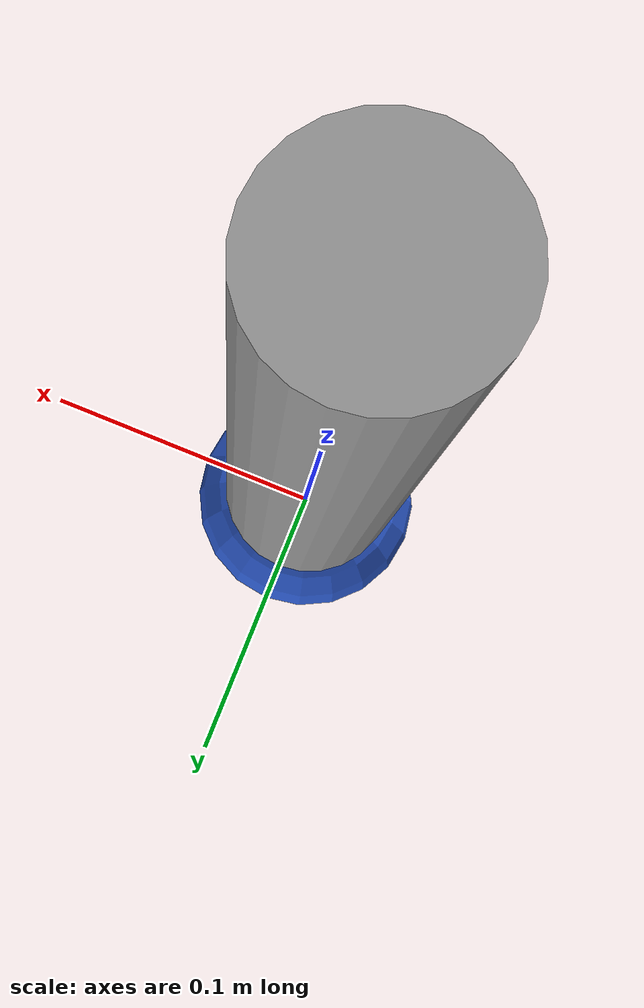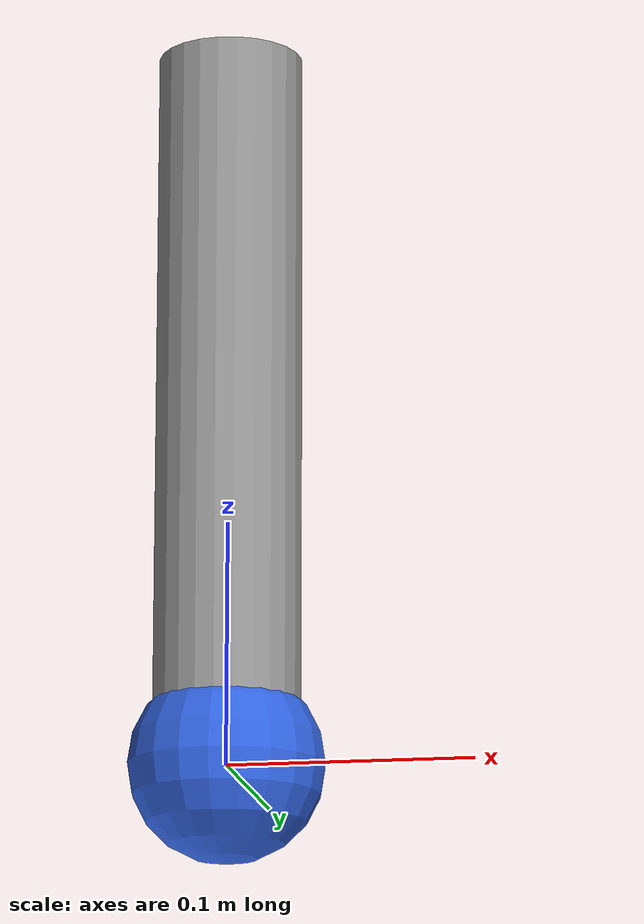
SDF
<?xml version="1.0"?>
<sdf version="1.5">
  <model name="mini_sdf_chain">
    <link name="base_link">
      <inertial>
        <mass>0.5</mass>
        <inertia>
          <ixx>0.002</ixx>
          <iyy>0.002</iyy>
          <izz>0.001</izz>
          <ixy>0</ixy>
          <ixz>0</ixz>
          <iyz>0</iyz>
        </inertia>
      </inertial>
      <collision name="base_collision">
        <geometry>
          <cylinder>
            <radius>0.03</radius>
            <length>0.3</length>
          </cylinder>
        </geometry>
      </collision>
      <visual name="base_visual">
        <pose>0 0 0.15 0 0 0</pose>
        <geometry>
          <cylinder>
            <radius>0.03</radius>
            <length>0.3</length>
          </cylinder>
        </geometry>
        <material>
          <ambient>0.6 0.6 0.6 1</ambient>
          <diffuse>0.6 0.6 0.6 1</diffuse>
        </material>
      </visual>
    </link>
    <link name="tool_link">
      <inertial>
        <mass>0.1</mass>
        <inertia>
          <ixx>0.0004</ixx>
          <iyy>0.0004</iyy>
          <izz>0.0004</izz>
          <ixy>0</ixy>
          <ixz>0</ixz>
          <iyz>0</iyz>
        </inertia>
      </inertial>
      <collision name="tool_collision">
        <geometry>
          <sphere>
            <radius>0.04</radius>
          </sphere>
        </geometry>
      </collision>
      <visual name="tool_visual">
        <geometry>
          <sphere>
            <radius>0.04</radius>
          </sphere>
        </geometry>
        <material>
          <ambient>0.2 0.4 0.9 1</ambient>
          <diffuse>0.2 0.4 0.9 1</diffuse>
        </material>
      </visual>
    </link>
    <joint name="tool_joint" type="revolute">
      <parent>base_link</parent>
      <child>tool_link</child>
      <pose>0 0 0.3 0 0 0</pose>
      <axis>
        <xyz>0 1 0</xyz>
        <limit>
          <lower>-1.57</lower>
          <upper>1.57</upper>
          <effort>10</effort>
          <velocity>5</velocity>
        </limit>
      </axis>
    </joint>
  </model>
</sdf>
